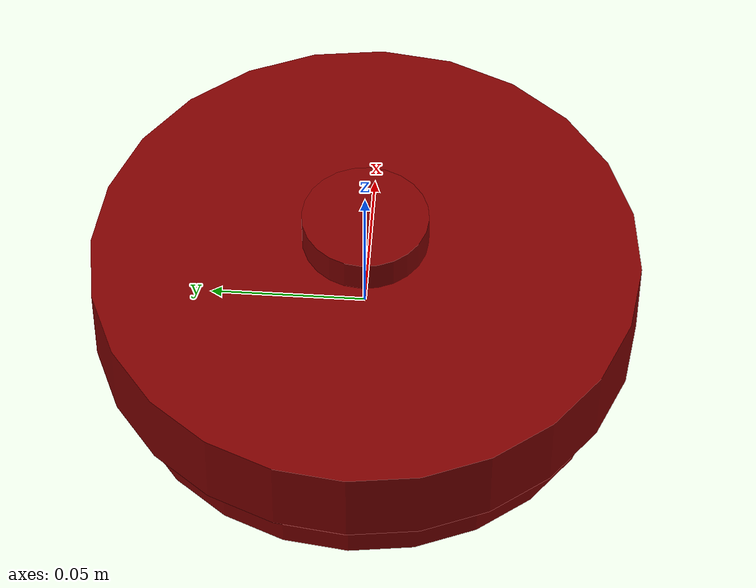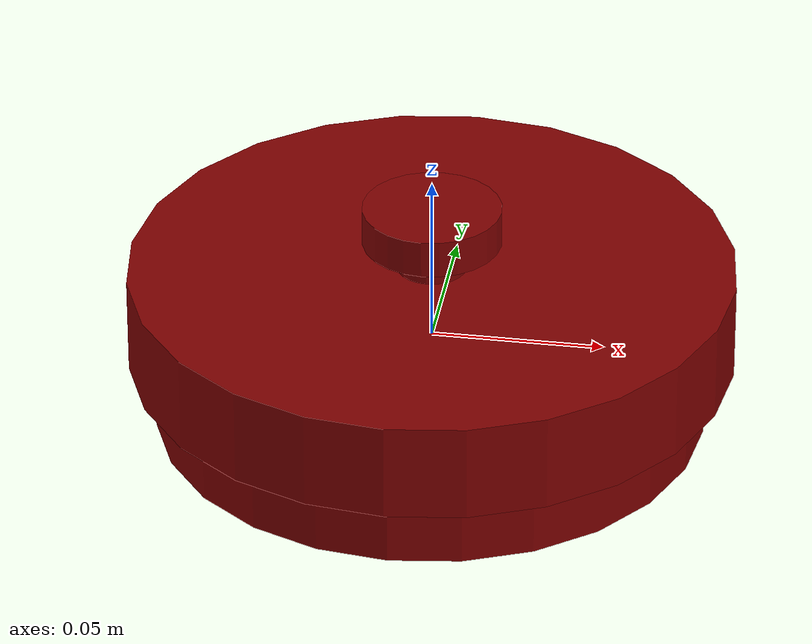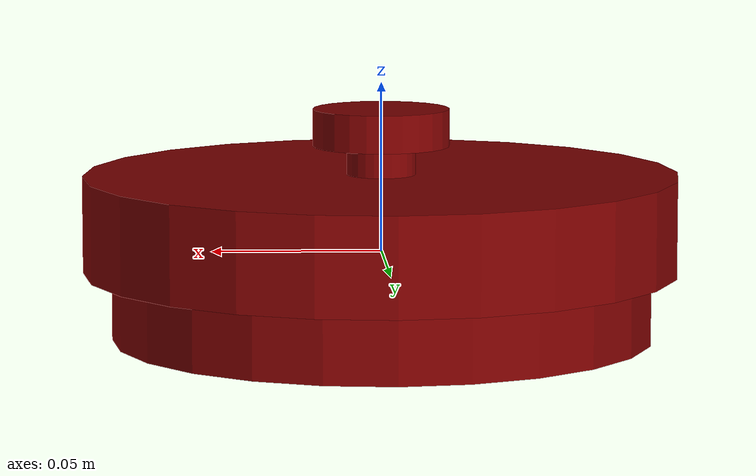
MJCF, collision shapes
<mujoco model="model">
  <option timestep="0.002" gravity="0.0 0.0 -9.81"/>
  <compiler angle="radian"/>
  <asset>
    <texture file="visuals/T_BC001.png" name="lid_material" type="2d"/>
    <material name="lid_material" rgba="1 1 1 1.0" texture="lid_material" shininess="0.4472135901451111" specular="0.3103448502657381"/>
    <mesh file="visuals/lid.obj" name="lid_vis"/>
  </asset>
  <default>
    <default class="visual">
      <geom conaffinity="0" contype="0" group="1" type="mesh"/>
    </default>
    <default class="collision">
      <geom group="0" rgba="0.5 0 0 0.5"/>
    </default>
    <default class="spawn">
      <geom group="0" rgba="1 1 1 0.5" contype="0" conaffinity="0"/>
      <site group="0" rgba="1 1 1 0.5"/>
    </default>
    <default class="region">
      <geom group="1" conaffinity="0" contype="0" rgba="0 1 0 0"/>
    </default>
  </default>
  <worldbody>
    <body>
      <body name="object">
        <geom mesh="lid_vis" type="mesh" solimp="0.998 0.998 0.001" solref="0.001 1" friction="0.95 0.3 0.1" class="visual" material="lid_material"/>
        <geom class="collision" type="cylinder" pos="-0.000426113427849633 -9.082793274997527e-05 -0.015304416704503304" size="0.08000660936117172 0.010581719689071178" quat="1.0 0.0 0.0 0.0" density="1000.0"/>
        <geom class="collision" type="cylinder" pos="7.976572150365097e-06 -9.082793274997527e-05 0.008445693295496687" size="0.08799700967311859 0.014345938339829445" quat="1.0 0.0 0.0 0.0" density="1000.0"/>
        <geom class="collision" type="cylinder" pos="7.976572150365097e-06 -9.082793274997527e-05 0.026947613295496692" size="0.010166909545660019 0.006375753786414862" quat="1.0 0.0 0.0 0.0" density="1000.0"/>
        <geom class="collision" name="handle_main" type="cylinder" pos="7.976572150365097e-06 -9.082793274997527e-05 0.03677652329549669" size="0.020150093361735344 0.005524957552552223" quat="1.0 0.0 0.0 0.0" density="1000.0"/>
        <geom class="region" name="reg_main" density="0" type="box" pos="7.98000000000465e-06 -9.086999999999984e-05 0.007742499999999999" size="0.083008 0.083147 0.033795"/>
      </body>
    </body>
  </worldbody>
</mujoco>
